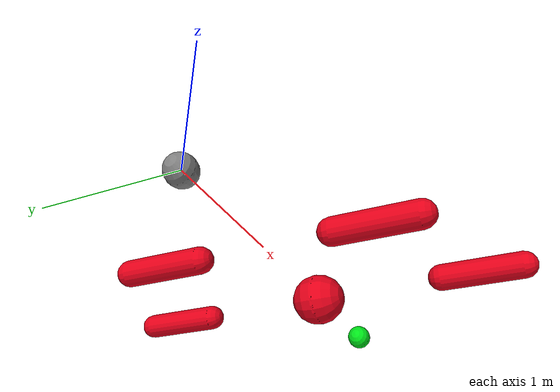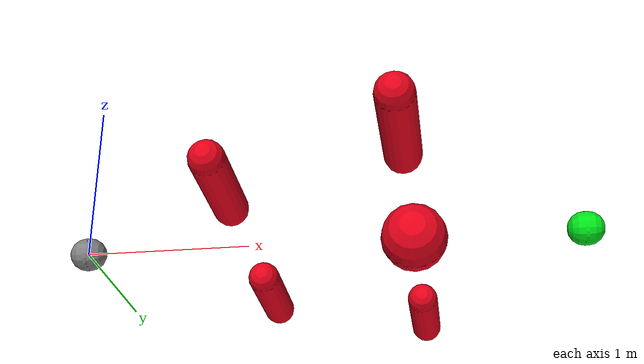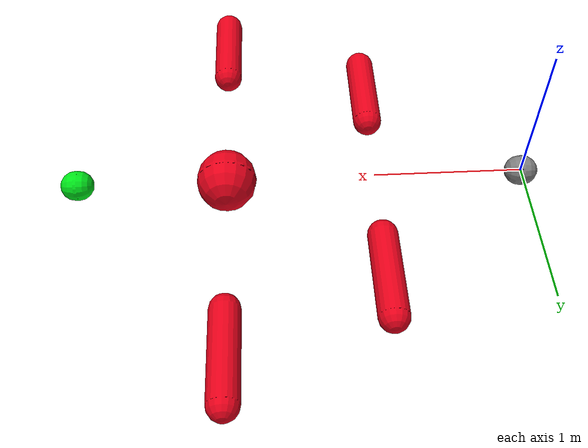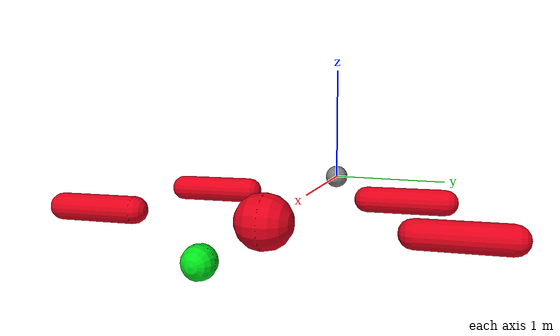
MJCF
<mujoco model="obstacle_course">
    <!-- A 2D particle must navigate around walls to reach a goal state. -->

    <compiler inertiafromgeom="true" angle="radian" coordinate="local" />
    <option timestep="0.01" gravity="0 0 0" iterations="20" integrator="Euler" />
    <default>
        <joint limited="false" damping="1" />
        <geom contype="2" conaffinity="1" condim="1" friction=".5 .1 .1" density="1000" margin="0.002" />
    </default>

    <worldbody>
        <body name="particle" pos="0 0 0">
            <geom name="particle_geom" type="capsule" fromto="-0.01 0 0 0.01 0 0" size="0.1" />
            <site name="particle_site" pos="0 0 0" size="0.01" />
            <joint name="ball_x" type="slide" pos="0 0 0" axis="1 0 0" />
            <joint name="ball_y" type="slide" pos="0 0 0" axis="0 1 0" />
        </body>
        <body name="wall1" pos="1 0.8 0">
            <geom name="wall1_geom" type="capsule" fromto="0 -0.3 0 0 0.3 0.01" size="0.1" contype="1" rgba="0.9 0 0.1 1"/>
        </body>
        <body name="wall2" pos="1 -0.8 0">
            <geom name="wall2_geom" type="capsule" fromto="0 -0.3 0 0 0.3 0.01" size="0.1" contype="1" rgba="0.9 0 0.1 1"/>
        </body>
        <body name="wall3" pos="2 0 0">
            <geom name="wall3_geom" type="capsule" fromto="0 -0.01 0 0 0.01 0" size="0.2" contype="1" rgba="0.9 0 0.1 1"/>
        </body>
        <body name="wall4" pos="2 1.3 0">
            <geom name="wall4_geom" type="capsule" fromto="0 -0.3 0 0 0.3 0.01" size="0.1" contype="1" rgba="0.9 0 0.1 1"/>
        </body>
        <body name="wall5" pos="2 -1.3 0">
            <geom name="wall5_geom" type="capsule" fromto="0 -0.3 0 0 0.3 0.01" size="0.1" contype="1" rgba="0.9 0 0.1 1"/>
        </body>
        <body name="target" pos="3 0 0">
            <geom name="target_geom" type="capsule" fromto="-0.01 0 0 0.01 0 0" size="0.1" rgba="0 0.9 0.1 1"/>
        </body>
    </worldbody>

    <actuator>
        <motor joint="ball_x" ctrlrange="-1.0 1.0" ctrllimited="true"/>
        <motor joint="ball_y" ctrlrange="-1.0 1.0" ctrllimited="true"/>
    </actuator>
</mujoco>
